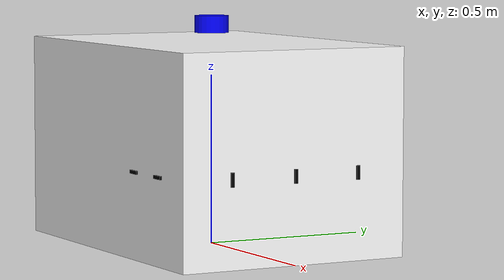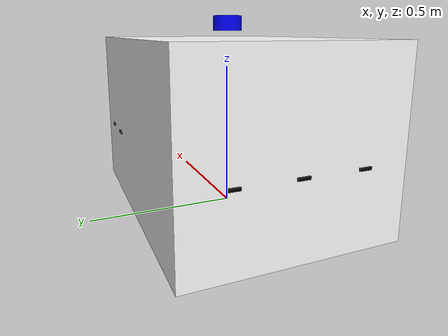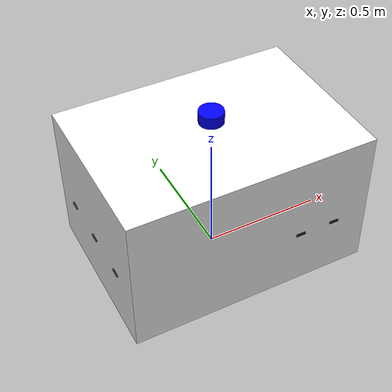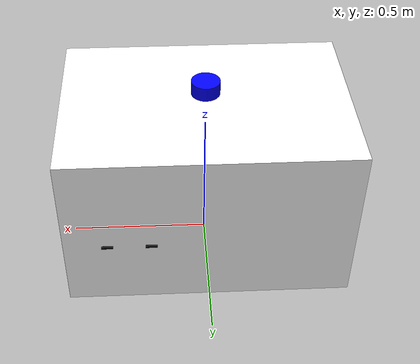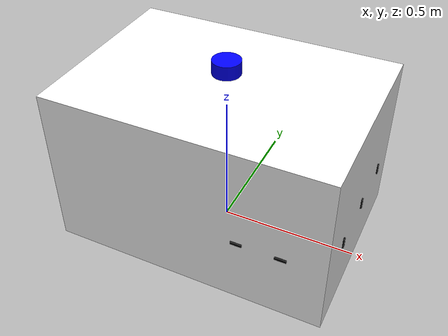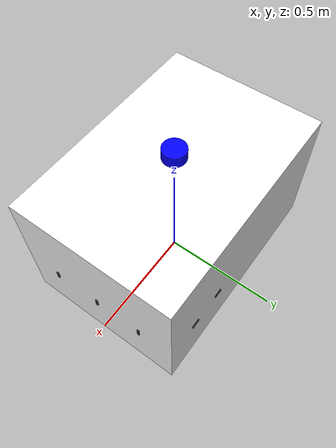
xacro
<?xml version="1.0"?>
<robot name="roboway" xmlns:xacro="http://www.ros.org/wiki/xacro">
  <material name="white">
      <color rgba="1 1 1 1"/>
  </material>
  <material name="black">
      <color rgba="0 0 0 1"/>
  </material>
  <material name="blue">
      <color rgba="0 0 1 1"/>
  </material>

  <link name="base_link">
    <visual>
      <geometry>
        <box size="1.0 0.7 0.6" />
      </geometry>
      <origin xyz="0 0 0.3"/>
      <material name="white"/>
    </visual>
  </link>

  <link name="velodyne">
    <visual>
      <geometry>
        <cylinder length="0.05" radius="0.05" />
      </geometry>
      <material name="blue"/>
    </visual>
  </link>
  <joint name="velodyne_link_joint" type="fixed">
    <parent link="base_link" />
    <child link="velodyne" />
    <origin xyz="0 0 0.65" />
  </joint>

  <link name="laser">
    <visual>
      <geometry>
        <cylinder length="0.05" radius="0.05" />
      </geometry>
      <material name="blue"/>
    </visual>
  </link>
  <joint name="laser_link_joint" type="fixed">
    <parent link="base_link" />
    <child link="laser" />
    <origin xyz="0.45 0 0.1" rpy="0 3.1415 3.1415" />
  </joint>

  <xacro:macro name="ultrasound" params="number *origin">
    <link name="ultrasound${number}">
      <visual>
        <geometry>
          <box size="0.01 0.04 0.01" />
        </geometry>
        <material name="black"/>
      </visual>
    </link>

    <joint name="ultrasound${number}_link_joint" type="fixed">
      <parent link="base_link" />
      <child link="ultrasound${number}" />
      <xacro:insert_block name="origin" />
    </joint>
  </xacro:macro>

  <xacro:ultrasound number="0">
      <origin xyz="0.5 0.2 0.25" rpy="1.5707 0 0"/>
  </xacro:ultrasound>

  <xacro:ultrasound number="1">
      <origin xyz="0.5 0 0.25" rpy="1.5707 0 0"/>
  </xacro:ultrasound>

  <xacro:ultrasound number="2">
      <origin xyz="0.5 -0.2 0.25" rpy="1.5707 0 0"/>
  </xacro:ultrasound>

  <xacro:ultrasound number="3">
      <origin xyz="0.35 -0.35 0.25" rpy="0 0 -1.5707"/>
  </xacro:ultrasound>

  <xacro:ultrasound number="4">
      <origin xyz="0.2 -0.35 0.25" rpy="0 0 -1.5707"/>
  </xacro:ultrasound>

  <xacro:ultrasound number="5">
      <origin xyz="-0.5 -0.2 0.25" rpy="0 0 3.1415"/>
  </xacro:ultrasound>

  <xacro:ultrasound number="6">
      <origin xyz="-0.5 0 0.25" rpy="0 0 3.1415"/>
  </xacro:ultrasound>

  <xacro:ultrasound number="7">
      <origin xyz="-0.5 0.2 0.25" rpy="0 0 3.1415"/>
  </xacro:ultrasound>

  <xacro:ultrasound number="8">
      <origin xyz="0.2 0.35 0.25" rpy="0 0 1.5707"/>
  </xacro:ultrasound>

  <xacro:ultrasound number="9">
      <origin xyz="0.35 0.35 0.25" rpy="0 0 1.5707"/>
  </xacro:ultrasound>

</robot>
